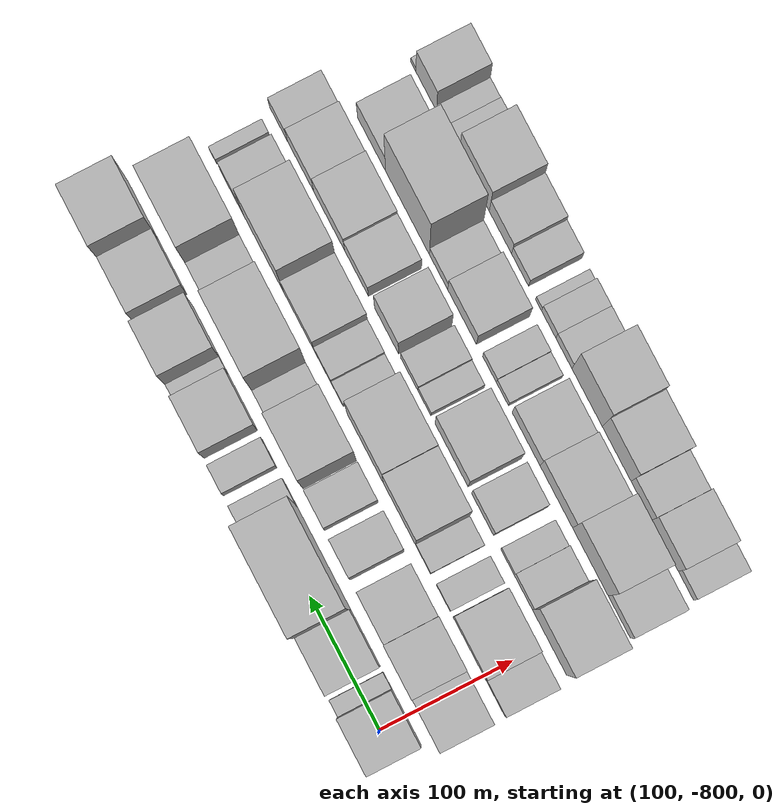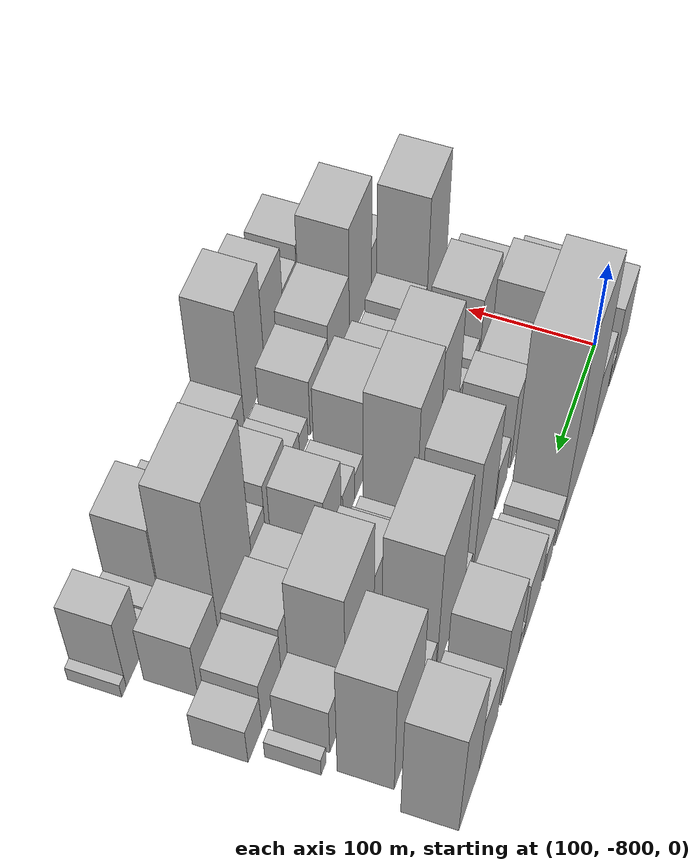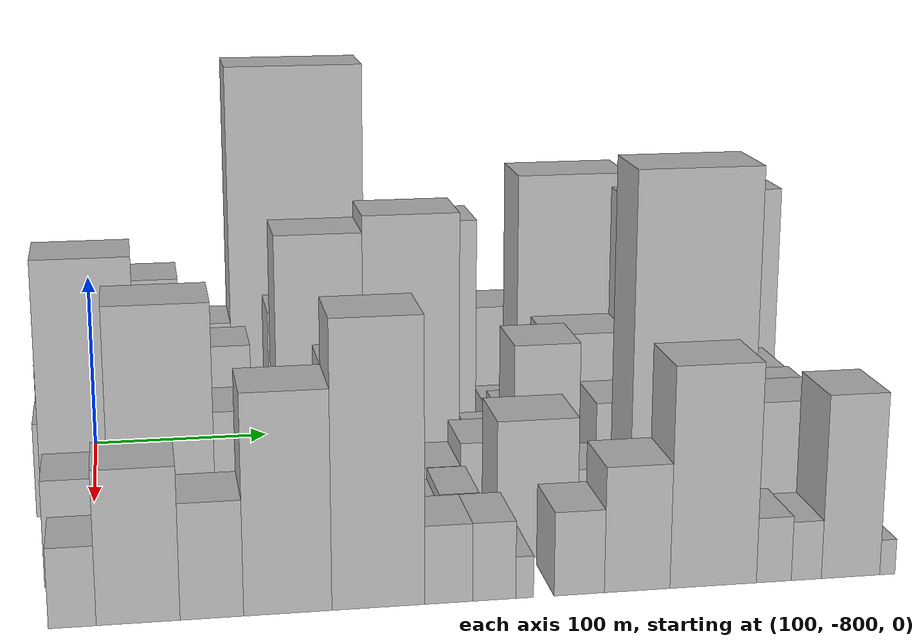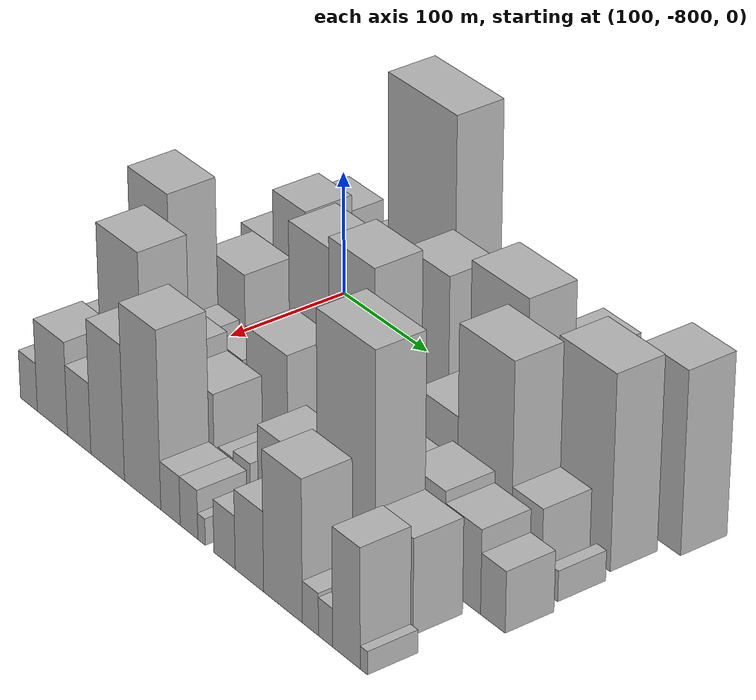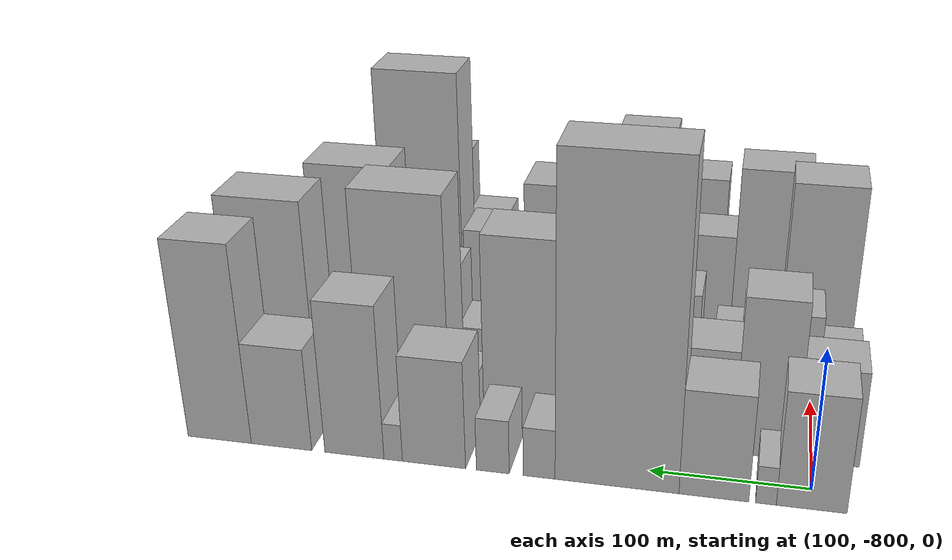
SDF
<sdf version="1.6">
 <world name="default">
  <model name="building_1">
   <static>1</static>
   <pose>100.0000 -800.0666 0 0.000000 0.000000 0.000000</pose>
   <link name="link">
    <pose>0 0 40.50 0 0 0</pose>
    <collision name="collision"><geometry><box><size>40.0000 41.8669 81.0000</size></box></geometry></collision>
    <visual name="visual">
     <cast_shadows>0</cast_shadows>
     <geometry><box><size>40.0000 41.8669 81.0000</size></box></geometry>
     <material>
      <script>
       <uri>model://HANNAS_wall/materials/scripts</uri>
       <uri>model://HANNAS_wall/materials/textures</uri>
       <name>vrc/HANNAS_wall</name>
      </script>
     </material>
    </visual>
   </link>
  </model>
  <model name="building_2">
   <static>1</static>
   <pose>100.0000 -772.9464 0 0.000000 0.000000 0.000000</pose>
   <link name="link">
    <pose>0 0 13.50 0 0 0</pose>
    <collision name="collision"><geometry><box><size>40.0000 12.3734 27.0000</size></box></geometry></collision>
    <visual name="visual">
     <cast_shadows>0</cast_shadows>
     <geometry><box><size>40.0000 12.3734 27.0000</size></box></geometry>
     <material>
      <script>
       <uri>model://HANNAS_wall/materials/scripts</uri>
       <uri>model://HANNAS_wall/materials/textures</uri>
       <name>vrc/HANNAS_wall</name>
      </script>
     </material>
    </visual>
   </link>
  </model>
  <model name="building_3">
   <static>1</static>
   <pose>100.0000 -741.5910 0 0.000000 0.000000 0.000000</pose>
   <link name="link">
    <pose>0 0 37.50 0 0 0</pose>
    <collision name="collision"><geometry><box><size>40.0000 42.3374 75.0000</size></box></geometry></collision>
    <visual name="visual">
     <cast_shadows>0</cast_shadows>
     <geometry><box><size>40.0000 42.3374 75.0000</size></box></geometry>
     <material>
      <script>
       <uri>model://HANNAS_wall/materials/scripts</uri>
       <uri>model://HANNAS_wall/materials/textures</uri>
       <name>vrc/HANNAS_wall</name>
      </script>
     </material>
    </visual>
   </link>
  </model>
  <model name="building_4">
   <static>1</static>
   <pose>100.0000 -681.8136 0 0.000000 0.000000 0.000000</pose>
   <link name="link">
    <pose>0 0 111.00 0 0 0</pose>
    <collision name="collision"><geometry><box><size>40.0000 77.2175 222.0000</size></box></geometry></collision>
    <visual name="visual">
     <cast_shadows>0</cast_shadows>
     <geometry><box><size>40.0000 77.2175 222.0000</size></box></geometry>
     <material>
      <script>
       <uri>model://HANNAS_wall/materials/scripts</uri>
       <uri>model://HANNAS_wall/materials/textures</uri>
       <name>vrc/HANNAS_wall</name>
      </script>
     </material>
    </visual>
   </link>
  </model>
  <model name="building_5">
   <static>1</static>
   <pose>100.0000 -633.0652 0 0.000000 0.000000 0.000000</pose>
   <link name="link">
    <pose>0 0 18.00 0 0 0</pose>
    <collision name="collision"><geometry><box><size>40.0000 20.2793 36.0000</size></box></geometry></collision>
    <visual name="visual">
     <cast_shadows>0</cast_shadows>
     <geometry><box><size>40.0000 20.2793 36.0000</size></box></geometry>
     <material>
      <script>
       <uri>model://HANNAS_wall/materials/scripts</uri>
       <uri>model://HANNAS_wall/materials/textures</uri>
       <name>vrc/HANNAS_wall</name>
      </script>
     </material>
    </visual>
   </link>
  </model>
  <model name="building_6">
   <static>1</static>
   <pose>100.0000 -603.3383 0 0.000000 0.000000 0.000000</pose>
   <link name="link">
    <pose>0 0 19.50 0 0 0</pose>
    <collision name="collision"><geometry><box><size>40.0000 21.1745 39.0000</size></box></geometry></collision>
    <visual name="visual">
     <cast_shadows>0</cast_shadows>
     <geometry><box><size>40.0000 21.1745 39.0000</size></box></geometry>
     <material>
      <script>
       <uri>model://HANNAS_wall/materials/scripts</uri>
       <uri>model://HANNAS_wall/materials/textures</uri>
       <name>vrc/HANNAS_wall</name>
      </script>
     </material>
    </visual>
   </link>
  </model>
  <model name="building_7">
   <static>1</static>
   <pose>100.0000 -564.9898 0 0.000000 0.000000 0.000000</pose>
   <link name="link">
    <pose>0 0 39.00 0 0 0</pose>
    <collision name="collision"><geometry><box><size>40.0000 41.5226 78.0000</size></box></geometry></collision>
    <visual name="visual">
     <cast_shadows>0</cast_shadows>
     <geometry><box><size>40.0000 41.5226 78.0000</size></box></geometry>
     <material>
      <script>
       <uri>model://HANNAS_wall/materials/scripts</uri>
       <uri>model://HANNAS_wall/materials/textures</uri>
       <name>vrc/HANNAS_wall</name>
      </script>
     </material>
    </visual>
   </link>
  </model>
  <model name="building_8">
   <static>1</static>
   <pose>100.0000 -538.1103 0 0.000000 0.000000 0.000000</pose>
   <link name="link">
    <pose>0 0 13.50 0 0 0</pose>
    <collision name="collision"><geometry><box><size>40.0000 12.2365 27.0000</size></box></geometry></collision>
    <visual name="visual">
     <cast_shadows>0</cast_shadows>
     <geometry><box><size>40.0000 12.2365 27.0000</size></box></geometry>
     <material>
      <script>
       <uri>model://HANNAS_wall/materials/scripts</uri>
       <uri>model://HANNAS_wall/materials/textures</uri>
       <name>vrc/HANNAS_wall</name>
      </script>
     </material>
    </visual>
   </link>
  </model>
  <model name="building_9">
   <static>1</static>
   <pose>100.0000 -512.1156 0 0.000000 0.000000 0.000000</pose>
   <link name="link">
    <pose>0 0 55.50 0 0 0</pose>
    <collision name="collision"><geometry><box><size>40.0000 39.7527 111.0000</size></box></geometry></collision>
    <visual name="visual">
     <cast_shadows>0</cast_shadows>
     <geometry><box><size>40.0000 39.7527 111.0000</size></box></geometry>
     <material>
      <script>
       <uri>model://HANNAS_wall/materials/scripts</uri>
       <uri>model://HANNAS_wall/materials/textures</uri>
       <name>vrc/HANNAS_wall</name>
      </script>
     </material>
    </visual>
   </link>
  </model>
  <model name="building_10">
   <static>1</static>
   <pose>100.0000 -462.4981 0 0.000000 0.000000 0.000000</pose>
   <link name="link">
    <pose>0 0 37.50 0 0 0</pose>
    <collision name="collision"><geometry><box><size>40.0000 41.4823 75.0000</size></box></geometry></collision>
    <visual name="visual">
     <cast_shadows>0</cast_shadows>
     <geometry><box><size>40.0000 41.4823 75.0000</size></box></geometry>
     <material>
      <script>
       <uri>model://HANNAS_wall/materials/scripts</uri>
       <uri>model://HANNAS_wall/materials/textures</uri>
       <name>vrc/HANNAS_wall</name>
      </script>
     </material>
    </visual>
   </link>
  </model>
  <model name="building_11">
   <static>1</static>
   <pose>100.0000 -419.6553 0 0.000000 0.000000 0.000000</pose>
   <link name="link">
    <pose>0 0 72.00 0 0 0</pose>
    <collision name="collision"><geometry><box><size>40.0000 44.2034 144.0000</size></box></geometry></collision>
    <visual name="visual">
     <cast_shadows>0</cast_shadows>
     <geometry><box><size>40.0000 44.2034 144.0000</size></box></geometry>
     <material>
      <script>
       <uri>model://HANNAS_wall/materials/scripts</uri>
       <uri>model://HANNAS_wall/materials/textures</uri>
       <name>vrc/HANNAS_wall</name>
      </script>
     </material>
    </visual>
   </link>
  </model>
  <model name="building_40">
   <static>1</static>
   <pose>149.0000 -810.1917 0 0.000000 0.000000 0.000000</pose>
   <link name="link">
    <pose>0 0 34.50 0 0 0</pose>
    <collision name="collision"><geometry><box><size>40.0000 39.6165 69.0000</size></box></geometry></collision>
    <visual name="visual">
     <cast_shadows>0</cast_shadows>
     <geometry><box><size>40.0000 39.6165 69.0000</size></box></geometry>
     <material>
      <script>
       <uri>model://HANNAS_wall/materials/scripts</uri>
       <uri>model://HANNAS_wall/materials/textures</uri>
       <name>vrc/HANNAS_wall</name>
      </script>
     </material>
    </visual>
   </link>
  </model>
  <model name="building_41">
   <static>1</static>
   <pose>149.0000 -770.7093 0 0.000000 0.000000 0.000000</pose>
   <link name="link">
    <pose>0 0 57.00 0 0 0</pose>
    <collision name="collision"><geometry><box><size>40.0000 39.3484 114.0000</size></box></geometry></collision>
    <visual name="visual">
     <cast_shadows>0</cast_shadows>
     <geometry><box><size>40.0000 39.3484 114.0000</size></box></geometry>
     <material>
      <script>
       <uri>model://HANNAS_wall/materials/scripts</uri>
       <uri>model://HANNAS_wall/materials/textures</uri>
       <name>vrc/HANNAS_wall</name>
      </script>
     </material>
    </visual>
   </link>
  </model>
  <model name="building_42">
   <static>1</static>
   <pose>149.0000 -731.8525 0 0.000000 0.000000 0.000000</pose>
   <link name="link">
    <pose>0 0 37.50 0 0 0</pose>
    <collision name="collision"><geometry><box><size>40.0000 38.3653 75.0000</size></box></geometry></collision>
    <visual name="visual">
     <cast_shadows>0</cast_shadows>
     <geometry><box><size>40.0000 38.3653 75.0000</size></box></geometry>
     <material>
      <script>
       <uri>model://HANNAS_wall/materials/scripts</uri>
       <uri>model://HANNAS_wall/materials/textures</uri>
       <name>vrc/HANNAS_wall</name>
      </script>
     </material>
    </visual>
   </link>
  </model>
  <model name="building_43">
   <static>1</static>
   <pose>149.0000 -688.6359 0 0.000000 0.000000 0.000000</pose>
   <link name="link">
    <pose>0 0 46.50 0 0 0</pose>
    <collision name="collision"><geometry><box><size>40.0000 28.0679 93.0000</size></box></geometry></collision>
    <visual name="visual">
     <cast_shadows>0</cast_shadows>
     <geometry><box><size>40.0000 28.0679 93.0000</size></box></geometry>
     <material>
      <script>
       <uri>model://HANNAS_wall/materials/scripts</uri>
       <uri>model://HANNAS_wall/materials/textures</uri>
       <name>vrc/HANNAS_wall</name>
      </script>
     </material>
    </visual>
   </link>
  </model>
  <model name="building_44">
   <static>1</static>
   <pose>149.0000 -651.4638 0 0.000000 0.000000 0.000000</pose>
   <link name="link">
    <pose>0 0 27.00 0 0 0</pose>
    <collision name="collision"><geometry><box><size>40.0000 28.2765 54.0000</size></box></geometry></collision>
    <visual name="visual">
     <cast_shadows>0</cast_shadows>
     <geometry><box><size>40.0000 28.2765 54.0000</size></box></geometry>
     <material>
      <script>
       <uri>model://HANNAS_wall/materials/scripts</uri>
       <uri>model://HANNAS_wall/materials/textures</uri>
       <name>vrc/HANNAS_wall</name>
      </script>
     </material>
    </visual>
   </link>
  </model>
  <model name="building_45">
   <static>1</static>
   <pose>149.0000 -610.1578 0 0.000000 0.000000 0.000000</pose>
   <link name="link">
    <pose>0 0 70.50 0 0 0</pose>
    <collision name="collision"><geometry><box><size>40.0000 48.3355 141.0000</size></box></geometry></collision>
    <visual name="visual">
     <cast_shadows>0</cast_shadows>
     <geometry><box><size>40.0000 48.3355 141.0000</size></box></geometry>
     <material>
      <script>
       <uri>model://HANNAS_wall/materials/scripts</uri>
       <uri>model://HANNAS_wall/materials/textures</uri>
       <name>vrc/HANNAS_wall</name>
      </script>
     </material>
    </visual>
   </link>
  </model>
  <model name="building_46">
   <static>1</static>
   <pose>149.0000 -571.2518 0 0.000000 0.000000 0.000000</pose>
   <link name="link">
    <pose>0 0 16.50 0 0 0</pose>
    <collision name="collision"><geometry><box><size>40.0000 17.4767 33.0000</size></box></geometry></collision>
    <visual name="visual">
     <cast_shadows>0</cast_shadows>
     <geometry><box><size>40.0000 17.4767 33.0000</size></box></geometry>
     <material>
      <script>
       <uri>model://HANNAS_wall/materials/scripts</uri>
       <uri>model://HANNAS_wall/materials/textures</uri>
       <name>vrc/HANNAS_wall</name>
      </script>
     </material>
    </visual>
   </link>
  </model>
  <model name="building_47">
   <static>1</static>
   <pose>149.0000 -531.8372 0 0.000000 0.000000 0.000000</pose>
   <link name="link">
    <pose>0 0 82.50 0 0 0</pose>
    <collision name="collision"><geometry><box><size>40.0000 61.3524 165.0000</size></box></geometry></collision>
    <visual name="visual">
     <cast_shadows>0</cast_shadows>
     <geometry><box><size>40.0000 61.3524 165.0000</size></box></geometry>
     <material>
      <script>
       <uri>model://HANNAS_wall/materials/scripts</uri>
       <uri>model://HANNAS_wall/materials/textures</uri>
       <name>vrc/HANNAS_wall</name>
      </script>
     </material>
    </visual>
   </link>
  </model>
  <model name="building_48">
   <static>1</static>
   <pose>149.0000 -483.6819 0 0.000000 0.000000 0.000000</pose>
   <link name="link">
    <pose>0 0 25.50 0 0 0</pose>
    <collision name="collision"><geometry><box><size>40.0000 28.9581 51.0000</size></box></geometry></collision>
    <visual name="visual">
     <cast_shadows>0</cast_shadows>
     <geometry><box><size>40.0000 28.9581 51.0000</size></box></geometry>
     <material>
      <script>
       <uri>model://HANNAS_wall/materials/scripts</uri>
       <uri>model://HANNAS_wall/materials/textures</uri>
       <name>vrc/HANNAS_wall</name>
      </script>
     </material>
    </visual>
   </link>
  </model>
  <model name="building_49">
   <static>1</static>
   <pose>149.0000 -440.0245 0 0.000000 0.000000 0.000000</pose>
   <link name="link">
    <pose>0 0 76.50 0 0 0</pose>
    <collision name="collision"><geometry><box><size>40.0000 58.3566 153.0000</size></box></geometry></collision>
    <visual name="visual">
     <cast_shadows>0</cast_shadows>
     <geometry><box><size>40.0000 58.3566 153.0000</size></box></geometry>
     <material>
      <script>
       <uri>model://HANNAS_wall/materials/scripts</uri>
       <uri>model://HANNAS_wall/materials/textures</uri>
       <name>vrc/HANNAS_wall</name>
      </script>
     </material>
    </visual>
   </link>
  </model>
  <model name="building_86">
   <static>1</static>
   <pose>198.0000 -816.2228 0 0.000000 0.000000 0.000000</pose>
   <link name="link">
    <pose>0 0 25.50 0 0 0</pose>
    <collision name="collision"><geometry><box><size>40.0000 27.5544 51.0000</size></box></geometry></collision>
    <visual name="visual">
     <cast_shadows>0</cast_shadows>
     <geometry><box><size>40.0000 27.5544 51.0000</size></box></geometry>
     <material>
      <script>
       <uri>model://HANNAS_wall/materials/scripts</uri>
       <uri>model://HANNAS_wall/materials/textures</uri>
       <name>vrc/HANNAS_wall</name>
      </script>
     </material>
    </visual>
   </link>
  </model>
  <model name="building_87">
   <static>1</static>
   <pose>198.0000 -779.1922 0 0.000000 0.000000 0.000000</pose>
   <link name="link">
    <pose>0 0 39.00 0 0 0</pose>
    <collision name="collision"><geometry><box><size>40.0000 46.5069 78.0000</size></box></geometry></collision>
    <visual name="visual">
     <cast_shadows>0</cast_shadows>
     <geometry><box><size>40.0000 46.5069 78.0000</size></box></geometry>
     <material>
      <script>
       <uri>model://HANNAS_wall/materials/scripts</uri>
       <uri>model://HANNAS_wall/materials/textures</uri>
       <name>vrc/HANNAS_wall</name>
      </script>
     </material>
    </visual>
   </link>
  </model>
  <model name="building_88">
   <static>1</static>
   <pose>198.0000 -741.8868 0 0.000000 0.000000 0.000000</pose>
   <link name="link">
    <pose>0 0 18.00 0 0 0</pose>
    <collision name="collision"><geometry><box><size>40.0000 20.1038 36.0000</size></box></geometry></collision>
    <visual name="visual">
     <cast_shadows>0</cast_shadows>
     <geometry><box><size>40.0000 20.1038 36.0000</size></box></geometry>
     <material>
      <script>
       <uri>model://HANNAS_wall/materials/scripts</uri>
       <uri>model://HANNAS_wall/materials/textures</uri>
       <name>vrc/HANNAS_wall</name>
      </script>
     </material>
    </visual>
   </link>
  </model>
  <model name="building_89">
   <static>1</static>
   <pose>198.0000 -713.1197 0 0.000000 0.000000 0.000000</pose>
   <link name="link">
    <pose>0 0 18.00 0 0 0</pose>
    <collision name="collision"><geometry><box><size>40.0000 21.4303 36.0000</size></box></geometry></collision>
    <visual name="visual">
     <cast_shadows>0</cast_shadows>
     <geometry><box><size>40.0000 21.4303 36.0000</size></box></geometry>
     <material>
      <script>
       <uri>model://HANNAS_wall/materials/scripts</uri>
       <uri>model://HANNAS_wall/materials/textures</uri>
       <name>vrc/HANNAS_wall</name>
      </script>
     </material>
    </visual>
   </link>
  </model>
  <model name="building_90">
   <static>1</static>
   <pose>198.0000 -679.1906 0 0.000000 0.000000 0.000000</pose>
   <link name="link">
    <pose>0 0 73.50 0 0 0</pose>
    <collision name="collision"><geometry><box><size>40.0000 46.4281 147.0000</size></box></geometry></collision>
    <visual name="visual">
     <cast_shadows>0</cast_shadows>
     <geometry><box><size>40.0000 46.4281 147.0000</size></box></geometry>
     <material>
      <script>
       <uri>model://HANNAS_wall/materials/scripts</uri>
       <uri>model://HANNAS_wall/materials/textures</uri>
       <name>vrc/HANNAS_wall</name>
      </script>
     </material>
    </visual>
   </link>
  </model>
  <model name="building_91">
   <static>1</static>
   <pose>198.0000 -630.0033 0 0.000000 0.000000 0.000000</pose>
   <link name="link">
    <pose>0 0 78.00 0 0 0</pose>
    <collision name="collision"><geometry><box><size>40.0000 51.9465 156.0000</size></box></geometry></collision>
    <visual name="visual">
     <cast_shadows>0</cast_shadows>
     <geometry><box><size>40.0000 51.9465 156.0000</size></box></geometry>
     <material>
      <script>
       <uri>model://HANNAS_wall/materials/scripts</uri>
       <uri>model://HANNAS_wall/materials/textures</uri>
       <name>vrc/HANNAS_wall</name>
      </script>
     </material>
    </visual>
   </link>
  </model>
  <model name="building_92">
   <static>1</static>
   <pose>198.0000 -589.7651 0 0.000000 0.000000 0.000000</pose>
   <link name="link">
    <pose>0 0 16.50 0 0 0</pose>
    <collision name="collision"><geometry><box><size>40.0000 16.5299 33.0000</size></box></geometry></collision>
    <visual name="visual">
     <cast_shadows>0</cast_shadows>
     <geometry><box><size>40.0000 16.5299 33.0000</size></box></geometry>
     <material>
      <script>
       <uri>model://HANNAS_wall/materials/scripts</uri>
       <uri>model://HANNAS_wall/materials/textures</uri>
       <name>vrc/HANNAS_wall</name>
      </script>
     </material>
    </visual>
   </link>
  </model>
  <model name="building_93">
   <static>1</static>
   <pose>198.0000 -569.1661 0 0.000000 0.000000 0.000000</pose>
   <link name="link">
    <pose>0 0 22.50 0 0 0</pose>
    <collision name="collision"><geometry><box><size>40.0000 24.6680 45.0000</size></box></geometry></collision>
    <visual name="visual">
     <cast_shadows>0</cast_shadows>
     <geometry><box><size>40.0000 24.6680 45.0000</size></box></geometry>
     <material>
      <script>
       <uri>model://HANNAS_wall/materials/scripts</uri>
       <uri>model://HANNAS_wall/materials/textures</uri>
       <name>vrc/HANNAS_wall</name>
      </script>
     </material>
    </visual>
   </link>
  </model>
  <model name="building_94">
   <static>1</static>
   <pose>198.0000 -534.4286 0 0.000000 0.000000 0.000000</pose>
   <link name="link">
    <pose>0 0 43.50 0 0 0</pose>
    <collision name="collision"><geometry><box><size>40.0000 44.8070 87.0000</size></box></geometry></collision>
    <visual name="visual">
     <cast_shadows>0</cast_shadows>
     <geometry><box><size>40.0000 44.8070 87.0000</size></box></geometry>
     <material>
      <script>
       <uri>model://HANNAS_wall/materials/scripts</uri>
       <uri>model://HANNAS_wall/materials/textures</uri>
       <name>vrc/HANNAS_wall</name>
      </script>
     </material>
    </visual>
   </link>
  </model>
  <model name="building_95">
   <static>1</static>
   <pose>198.0000 -482.9594 0 0.000000 0.000000 0.000000</pose>
   <link name="link">
    <pose>0 0 79.50 0 0 0</pose>
    <collision name="collision"><geometry><box><size>40.0000 58.1315 159.0000</size></box></geometry></collision>
    <visual name="visual">
     <cast_shadows>0</cast_shadows>
     <geometry><box><size>40.0000 58.1315 159.0000</size></box></geometry>
     <material>
      <script>
       <uri>model://HANNAS_wall/materials/scripts</uri>
       <uri>model://HANNAS_wall/materials/textures</uri>
       <name>vrc/HANNAS_wall</name>
      </script>
     </material>
    </visual>
   </link>
  </model>
  <model name="building_96">
   <static>1</static>
   <pose>198.0000 -437.7335 0 0.000000 0.000000 0.000000</pose>
   <link name="link">
    <pose>0 0 31.50 0 0 0</pose>
    <collision name="collision"><geometry><box><size>40.0000 32.3203 63.0000</size></box></geometry></collision>
    <visual name="visual">
     <cast_shadows>0</cast_shadows>
     <geometry><box><size>40.0000 32.3203 63.0000</size></box></geometry>
     <material>
      <script>
       <uri>model://HANNAS_wall/materials/scripts</uri>
       <uri>model://HANNAS_wall/materials/textures</uri>
       <name>vrc/HANNAS_wall</name>
      </script>
     </material>
    </visual>
   </link>
  </model>
  <model name="building_97">
   <static>1</static>
   <pose>198.0000 -409.5723 0 0.000000 0.000000 0.000000</pose>
   <link name="link">
    <pose>0 0 12.00 0 0 0</pose>
    <collision name="collision"><geometry><box><size>40.0000 10.0021 24.0000</size></box></geometry></collision>
    <visual name="visual">
     <cast_shadows>0</cast_shadows>
     <geometry><box><size>40.0000 10.0021 24.0000</size></box></geometry>
     <material>
      <script>
       <uri>model://HANNAS_wall/materials/scripts</uri>
       <uri>model://HANNAS_wall/materials/textures</uri>
       <name>vrc/HANNAS_wall</name>
      </script>
     </material>
    </visual>
   </link>
  </model>
  <model name="building_136">
   <static>1</static>
   <pose>247.0000 -800.6093 0 0.000000 0.000000 0.000000</pose>
   <link name="link">
    <pose>0 0 75.00 0 0 0</pose>
    <collision name="collision"><geometry><box><size>40.0000 48.7814 150.0000</size></box></geometry></collision>
    <visual name="visual">
     <cast_shadows>0</cast_shadows>
     <geometry><box><size>40.0000 48.7814 150.0000</size></box></geometry>
     <material>
      <script>
       <uri>model://HANNAS_wall/materials/scripts</uri>
       <uri>model://HANNAS_wall/materials/textures</uri>
       <name>vrc/HANNAS_wall</name>
      </script>
     </material>
    </visual>
   </link>
  </model>
  <model name="building_137">
   <static>1</static>
   <pose>247.0000 -763.0975 0 0.000000 0.000000 0.000000</pose>
   <link name="link">
    <pose>0 0 24.00 0 0 0</pose>
    <collision name="collision"><geometry><box><size>40.0000 26.2423 48.0000</size></box></geometry></collision>
    <visual name="visual">
     <cast_shadows>0</cast_shadows>
     <geometry><box><size>40.0000 26.2423 48.0000</size></box></geometry>
     <material>
      <script>
       <uri>model://HANNAS_wall/materials/scripts</uri>
       <uri>model://HANNAS_wall/materials/textures</uri>
       <name>vrc/HANNAS_wall</name>
      </script>
     </material>
    </visual>
   </link>
  </model>
  <model name="building_138">
   <static>1</static>
   <pose>247.0000 -740.2750 0 0.000000 0.000000 0.000000</pose>
   <link name="link">
    <pose>0 0 16.50 0 0 0</pose>
    <collision name="collision"><geometry><box><size>40.0000 19.4026 33.0000</size></box></geometry></collision>
    <visual name="visual">
     <cast_shadows>0</cast_shadows>
     <geometry><box><size>40.0000 19.4026 33.0000</size></box></geometry>
     <material>
      <script>
       <uri>model://HANNAS_wall/materials/scripts</uri>
       <uri>model://HANNAS_wall/materials/textures</uri>
       <name>vrc/HANNAS_wall</name>
      </script>
     </material>
    </visual>
   </link>
  </model>
  <model name="building_139">
   <static>1</static>
   <pose>247.0000 -704.7419 0 0.000000 0.000000 0.000000</pose>
   <link name="link">
    <pose>0 0 30.00 0 0 0</pose>
    <collision name="collision"><geometry><box><size>40.0000 31.6636 60.0000</size></box></geometry></collision>
    <visual name="visual">
     <cast_shadows>0</cast_shadows>
     <geometry><box><size>40.0000 31.6636 60.0000</size></box></geometry>
     <material>
      <script>
       <uri>model://HANNAS_wall/materials/scripts</uri>
       <uri>model://HANNAS_wall/materials/textures</uri>
       <name>vrc/HANNAS_wall</name>
      </script>
     </material>
    </visual>
   </link>
  </model>
  <model name="building_140">
   <static>1</static>
   <pose>247.0000 -660.1826 0 0.000000 0.000000 0.000000</pose>
   <link name="link">
    <pose>0 0 45.00 0 0 0</pose>
    <collision name="collision"><geometry><box><size>40.0000 47.4549 90.0000</size></box></geometry></collision>
    <visual name="visual">
     <cast_shadows>0</cast_shadows>
     <geometry><box><size>40.0000 47.4549 90.0000</size></box></geometry>
     <material>
      <script>
       <uri>model://HANNAS_wall/materials/scripts</uri>
       <uri>model://HANNAS_wall/materials/textures</uri>
       <name>vrc/HANNAS_wall</name>
      </script>
     </material>
    </visual>
   </link>
  </model>
  <model name="building_141">
   <static>1</static>
   <pose>247.0000 -621.1882 0 0.000000 0.000000 0.000000</pose>
   <link name="link">
    <pose>0 0 16.50 0 0 0</pose>
    <collision name="collision"><geometry><box><size>40.0000 18.5339 33.0000</size></box></geometry></collision>
    <visual name="visual">
     <cast_shadows>0</cast_shadows>
     <geometry><box><size>40.0000 18.5339 33.0000</size></box></geometry>
     <material>
      <script>
       <uri>model://HANNAS_wall/materials/scripts</uri>
       <uri>model://HANNAS_wall/materials/textures</uri>
       <name>vrc/HANNAS_wall</name>
      </script>
     </material>
    </visual>
   </link>
  </model>
  <model name="building_142">
   <static>1</static>
   <pose>247.0000 -599.3636 0 0.000000 0.000000 0.000000</pose>
   <link name="link">
    <pose>0 0 22.50 0 0 0</pose>
    <collision name="collision"><geometry><box><size>40.0000 25.1154 45.0000</size></box></geometry></collision>
    <visual name="visual">
     <cast_shadows>0</cast_shadows>
     <geometry><box><size>40.0000 25.1154 45.0000</size></box></geometry>
     <material>
      <script>
       <uri>model://HANNAS_wall/materials/scripts</uri>
       <uri>model://HANNAS_wall/materials/textures</uri>
       <name>vrc/HANNAS_wall</name>
      </script>
     </material>
    </visual>
   </link>
  </model>
  <model name="building_143">
   <static>1</static>
   <pose>247.0000 -566.4821 0 0.000000 0.000000 0.000000</pose>
   <link name="link">
    <pose>0 0 48.00 0 0 0</pose>
    <collision name="collision"><geometry><box><size>40.0000 34.6477 96.0000</size></box></geometry></collision>
    <visual name="visual">
     <cast_shadows>0</cast_shadows>
     <geometry><box><size>40.0000 34.6477 96.0000</size></box></geometry>
     <material>
      <script>
       <uri>model://HANNAS_wall/materials/scripts</uri>
       <uri>model://HANNAS_wall/materials/textures</uri>
       <name>vrc/HANNAS_wall</name>
      </script>
     </material>
    </visual>
   </link>
  </model>
  <model name="building_144">
   <static>1</static>
   <pose>247.0000 -523.0402 0 0.000000 0.000000 0.000000</pose>
   <link name="link">
    <pose>0 0 31.50 0 0 0</pose>
    <collision name="collision"><geometry><box><size>40.0000 34.2360 63.0000</size></box></geometry></collision>
    <visual name="visual">
     <cast_shadows>0</cast_shadows>
     <geometry><box><size>40.0000 34.2360 63.0000</size></box></geometry>
     <material>
      <script>
       <uri>model://HANNAS_wall/materials/scripts</uri>
       <uri>model://HANNAS_wall/materials/textures</uri>
       <name>vrc/HANNAS_wall</name>
      </script>
     </material>
    </visual>
   </link>
  </model>
  <model name="building_145">
   <static>1</static>
   <pose>247.0000 -483.5645 0 0.000000 0.000000 0.000000</pose>
   <link name="link">
    <pose>0 0 37.50 0 0 0</pose>
    <collision name="collision"><geometry><box><size>40.0000 44.7155 75.0000</size></box></geometry></collision>
    <visual name="visual">
     <cast_shadows>0</cast_shadows>
     <geometry><box><size>40.0000 44.7155 75.0000</size></box></geometry>
     <material>
      <script>
       <uri>model://HANNAS_wall/materials/scripts</uri>
       <uri>model://HANNAS_wall/materials/textures</uri>
       <name>vrc/HANNAS_wall</name>
      </script>
     </material>
    </visual>
   </link>
  </model>
  <model name="building_146">
   <static>1</static>
   <pose>247.0000 -442.1226 0 0.000000 0.000000 0.000000</pose>
   <link name="link">
    <pose>0 0 33.00 0 0 0</pose>
    <collision name="collision"><geometry><box><size>40.0000 38.1683 66.0000</size></box></geometry></collision>
    <visual name="visual">
     <cast_shadows>0</cast_shadows>
     <geometry><box><size>40.0000 38.1683 66.0000</size></box></geometry>
     <material>
      <script>
       <uri>model://HANNAS_wall/materials/scripts</uri>
       <uri>model://HANNAS_wall/materials/textures</uri>
       <name>vrc/HANNAS_wall</name>
      </script>
     </material>
    </visual>
   </link>
  </model>
  <model name="building_147">
   <static>1</static>
   <pose>247.0000 -410.1035 0 0.000000 0.000000 0.000000</pose>
   <link name="link">
    <pose>0 0 24.00 0 0 0</pose>
    <collision name="collision"><geometry><box><size>40.0000 25.8699 48.0000</size></box></geometry></collision>
    <visual name="visual">
     <cast_shadows>0</cast_shadows>
     <geometry><box><size>40.0000 25.8699 48.0000</size></box></geometry>
     <material>
      <script>
       <uri>model://HANNAS_wall/materials/scripts</uri>
       <uri>model://HANNAS_wall/materials/textures</uri>
       <name>vrc/HANNAS_wall</name>
      </script>
     </material>
    </visual>
   </link>
  </model>
  <model name="building_184">
   <static>1</static>
   <pose>296.0000 -807.0984 0 0.000000 0.000000 0.000000</pose>
   <link name="link">
    <pose>0 0 27.00 0 0 0</pose>
    <collision name="collision"><geometry><box><size>40.0000 31.8032 54.0000</size></box></geometry></collision>
    <visual name="visual">
     <cast_shadows>0</cast_shadows>
     <geometry><box><size>40.0000 31.8032 54.0000</size></box></geometry>
     <material>
      <script>
       <uri>model://HANNAS_wall/materials/scripts</uri>
       <uri>model://HANNAS_wall/materials/textures</uri>
       <name>vrc/HANNAS_wall</name>
      </script>
     </material>
    </visual>
   </link>
  </model>
  <model name="building_185">
   <static>1</static>
   <pose>296.0000 -765.7875 0 0.000000 0.000000 0.000000</pose>
   <link name="link">
    <pose>0 0 69.00 0 0 0</pose>
    <collision name="collision"><geometry><box><size>40.0000 50.8186 138.0000</size></box></geometry></collision>
    <visual name="visual">
     <cast_shadows>0</cast_shadows>
     <geometry><box><size>40.0000 50.8186 138.0000</size></box></geometry>
     <material>
      <script>
       <uri>model://HANNAS_wall/materials/scripts</uri>
       <uri>model://HANNAS_wall/materials/textures</uri>
       <name>vrc/HANNAS_wall</name>
      </script>
     </material>
    </visual>
   </link>
  </model>
  <model name="building_186">
   <static>1</static>
   <pose>296.0000 -717.0696 0 0.000000 0.000000 0.000000</pose>
   <link name="link">
    <pose>0 0 42.00 0 0 0</pose>
    <collision name="collision"><geometry><box><size>40.0000 46.6173 84.0000</size></box></geometry></collision>
    <visual name="visual">
     <cast_shadows>0</cast_shadows>
     <geometry><box><size>40.0000 46.6173 84.0000</size></box></geometry>
     <material>
      <script>
       <uri>model://HANNAS_wall/materials/scripts</uri>
       <uri>model://HANNAS_wall/materials/textures</uri>
       <name>vrc/HANNAS_wall</name>
      </script>
     </material>
    </visual>
   </link>
  </model>
  <model name="building_187">
   <static>1</static>
   <pose>296.0000 -673.6247 0 0.000000 0.000000 0.000000</pose>
   <link name="link">
    <pose>0 0 34.50 0 0 0</pose>
    <collision name="collision"><geometry><box><size>40.0000 40.2724 69.0000</size></box></geometry></collision>
    <visual name="visual">
     <cast_shadows>0</cast_shadows>
     <geometry><box><size>40.0000 40.2724 69.0000</size></box></geometry>
     <material>
      <script>
       <uri>model://HANNAS_wall/materials/scripts</uri>
       <uri>model://HANNAS_wall/materials/textures</uri>
       <name>vrc/HANNAS_wall</name>
      </script>
     </material>
    </visual>
   </link>
  </model>
  <model name="building_188">
   <static>1</static>
   <pose>296.0000 -639.7486 0 0.000000 0.000000 0.000000</pose>
   <link name="link">
    <pose>0 0 15.00 0 0 0</pose>
    <collision name="collision"><geometry><box><size>40.0000 17.4798 30.0000</size></box></geometry></collision>
    <visual name="visual">
     <cast_shadows>0</cast_shadows>
     <geometry><box><size>40.0000 17.4798 30.0000</size></box></geometry>
     <material>
      <script>
       <uri>model://HANNAS_wall/materials/scripts</uri>
       <uri>model://HANNAS_wall/materials/textures</uri>
       <name>vrc/HANNAS_wall</name>
      </script>
     </material>
    </visual>
   </link>
  </model>
  <model name="building_189">
   <static>1</static>
   <pose>296.0000 -621.0604 0 0.000000 0.000000 0.000000</pose>
   <link name="link">
    <pose>0 0 18.00 0 0 0</pose>
    <collision name="collision"><geometry><box><size>40.0000 19.8966 36.0000</size></box></geometry></collision>
    <visual name="visual">
     <cast_shadows>0</cast_shadows>
     <geometry><box><size>40.0000 19.8966 36.0000</size></box></geometry>
     <material>
      <script>
       <uri>model://HANNAS_wall/materials/scripts</uri>
       <uri>model://HANNAS_wall/materials/textures</uri>
       <name>vrc/HANNAS_wall</name>
      </script>
     </material>
    </visual>
   </link>
  </model>
  <model name="building_190">
   <static>1</static>
   <pose>296.0000 -581.5223 0 0.000000 0.000000 0.000000</pose>
   <link name="link">
    <pose>0 0 36.00 0 0 0</pose>
    <collision name="collision"><geometry><box><size>40.0000 41.1797 72.0000</size></box></geometry></collision>
    <visual name="visual">
     <cast_shadows>0</cast_shadows>
     <geometry><box><size>40.0000 41.1797 72.0000</size></box></geometry>
     <material>
      <script>
       <uri>model://HANNAS_wall/materials/scripts</uri>
       <uri>model://HANNAS_wall/materials/textures</uri>
       <name>vrc/HANNAS_wall</name>
      </script>
     </material>
    </visual>
   </link>
  </model>
  <model name="building_191">
   <static>1</static>
   <pose>296.0000 -547.6765 0 0.000000 0.000000 0.000000</pose>
   <link name="link">
    <pose>0 0 22.50 0 0 0</pose>
    <collision name="collision"><geometry><box><size>40.0000 26.5118 45.0000</size></box></geometry></collision>
    <visual name="visual">
     <cast_shadows>0</cast_shadows>
     <geometry><box><size>40.0000 26.5118 45.0000</size></box></geometry>
     <material>
      <script>
       <uri>model://HANNAS_wall/materials/scripts</uri>
       <uri>model://HANNAS_wall/materials/textures</uri>
       <name>vrc/HANNAS_wall</name>
      </script>
     </material>
    </visual>
   </link>
  </model>
  <model name="building_192">
   <static>1</static>
   <pose>296.0000 -502.7590 0 0.000000 0.000000 0.000000</pose>
   <link name="link">
    <pose>0 0 97.50 0 0 0</pose>
    <collision name="collision"><geometry><box><size>40.0000 63.3232 195.0000</size></box></geometry></collision>
    <visual name="visual">
     <cast_shadows>0</cast_shadows>
     <geometry><box><size>40.0000 63.3232 195.0000</size></box></geometry>
     <material>
      <script>
       <uri>model://HANNAS_wall/materials/scripts</uri>
       <uri>model://HANNAS_wall/materials/textures</uri>
       <name>vrc/HANNAS_wall</name>
      </script>
     </material>
    </visual>
   </link>
  </model>
  <model name="building_193">
   <static>1</static>
   <pose>296.0000 -450.7876 0 0.000000 0.000000 0.000000</pose>
   <link name="link">
    <pose>0 0 37.50 0 0 0</pose>
    <collision name="collision"><geometry><box><size>40.0000 40.6196 75.0000</size></box></geometry></collision>
    <visual name="visual">
     <cast_shadows>0</cast_shadows>
     <geometry><box><size>40.0000 40.6196 75.0000</size></box></geometry>
     <material>
      <script>
       <uri>model://HANNAS_wall/materials/scripts</uri>
       <uri>model://HANNAS_wall/materials/textures</uri>
       <name>vrc/HANNAS_wall</name>
      </script>
     </material>
    </visual>
   </link>
  </model>
  <model name="building_230">
   <static>1</static>
   <pose>345.0000 -809.1842 0 0.000000 0.000000 0.000000</pose>
   <link name="link">
    <pose>0 0 19.50 0 0 0</pose>
    <collision name="collision"><geometry><box><size>40.0000 21.6315 39.0000</size></box></geometry></collision>
    <visual name="visual">
     <cast_shadows>0</cast_shadows>
     <geometry><box><size>40.0000 21.6315 39.0000</size></box></geometry>
     <material>
      <script>
       <uri>model://HANNAS_wall/materials/scripts</uri>
       <uri>model://HANNAS_wall/materials/textures</uri>
       <name>vrc/HANNAS_wall</name>
      </script>
     </material>
    </visual>
   </link>
  </model>
  <model name="building_231">
   <static>1</static>
   <pose>345.0000 -779.2790 0 0.000000 0.000000 0.000000</pose>
   <link name="link">
    <pose>0 0 37.50 0 0 0</pose>
    <collision name="collision"><geometry><box><size>40.0000 38.1789 75.0000</size></box></geometry></collision>
    <visual name="visual">
     <cast_shadows>0</cast_shadows>
     <geometry><box><size>40.0000 38.1789 75.0000</size></box></geometry>
     <material>
      <script>
       <uri>model://HANNAS_wall/materials/scripts</uri>
       <uri>model://HANNAS_wall/materials/textures</uri>
       <name>vrc/HANNAS_wall</name>
      </script>
     </material>
    </visual>
   </link>
  </model>
  <model name="building_232">
   <static>1</static>
   <pose>345.0000 -745.5553 0 0.000000 0.000000 0.000000</pose>
   <link name="link">
    <pose>0 0 28.50 0 0 0</pose>
    <collision name="collision"><geometry><box><size>40.0000 29.2686 57.0000</size></box></geometry></collision>
    <visual name="visual">
     <cast_shadows>0</cast_shadows>
     <geometry><box><size>40.0000 29.2686 57.0000</size></box></geometry>
     <material>
      <script>
       <uri>model://HANNAS_wall/materials/scripts</uri>
       <uri>model://HANNAS_wall/materials/textures</uri>
       <name>vrc/HANNAS_wall</name>
      </script>
     </material>
    </visual>
   </link>
  </model>
  <model name="building_233">
   <static>1</static>
   <pose>345.0000 -710.3779 0 0.000000 0.000000 0.000000</pose>
   <link name="link">
    <pose>0 0 54.00 0 0 0</pose>
    <collision name="collision"><geometry><box><size>40.0000 41.0862 108.0000</size></box></geometry></collision>
    <visual name="visual">
     <cast_shadows>0</cast_shadows>
     <geometry><box><size>40.0000 41.0862 108.0000</size></box></geometry>
     <material>
      <script>
       <uri>model://HANNAS_wall/materials/scripts</uri>
       <uri>model://HANNAS_wall/materials/textures</uri>
       <name>vrc/HANNAS_wall</name>
      </script>
     </material>
    </visual>
   </link>
  </model>
  <model name="building_234">
   <static>1</static>
   <pose>345.0000 -667.9379 0 0.000000 0.000000 0.000000</pose>
   <link name="link">
    <pose>0 0 70.50 0 0 0</pose>
    <collision name="collision"><geometry><box><size>40.0000 43.7939 141.0000</size></box></geometry></collision>
    <visual name="visual">
     <cast_shadows>0</cast_shadows>
     <geometry><box><size>40.0000 43.7939 141.0000</size></box></geometry>
     <material>
      <script>
       <uri>model://HANNAS_wall/materials/scripts</uri>
       <uri>model://HANNAS_wall/materials/textures</uri>
       <name>vrc/HANNAS_wall</name>
      </script>
     </material>
    </visual>
   </link>
  </model>
  <model name="building_235">
   <static>1</static>
   <pose>345.0000 -634.5459 0 0.000000 0.000000 0.000000</pose>
   <link name="link">
    <pose>0 0 19.50 0 0 0</pose>
    <collision name="collision"><geometry><box><size>40.0000 22.9900 39.0000</size></box></geometry></collision>
    <visual name="visual">
     <cast_shadows>0</cast_shadows>
     <geometry><box><size>40.0000 22.9900 39.0000</size></box></geometry>
     <material>
      <script>
       <uri>model://HANNAS_wall/materials/scripts</uri>
       <uri>model://HANNAS_wall/materials/textures</uri>
       <name>vrc/HANNAS_wall</name>
      </script>
     </material>
    </visual>
   </link>
  </model>
  <model name="building_236">
   <static>1</static>
   <pose>345.0000 -612.7099 0 0.000000 0.000000 0.000000</pose>
   <link name="link">
    <pose>0 0 19.50 0 0 0</pose>
    <collision name="collision"><geometry><box><size>40.0000 20.6819 39.0000</size></box></geometry></collision>
    <visual name="visual">
     <cast_shadows>0</cast_shadows>
     <geometry><box><size>40.0000 20.6819 39.0000</size></box></geometry>
     <material>
      <script>
       <uri>model://HANNAS_wall/materials/scripts</uri>
       <uri>model://HANNAS_wall/materials/textures</uri>
       <name>vrc/HANNAS_wall</name>
      </script>
     </material>
    </visual>
   </link>
  </model>
  <model name="building_237">
   <static>1</static>
   <pose>345.0000 -598.0635 0 0.000000 0.000000 0.000000</pose>
   <link name="link">
    <pose>0 0 10.50 0 0 0</pose>
    <collision name="collision"><geometry><box><size>40.0000 8.6109 21.0000</size></box></geometry></collision>
    <visual name="visual">
     <cast_shadows>0</cast_shadows>
     <geometry><box><size>40.0000 8.6109 21.0000</size></box></geometry>
     <material>
      <script>
       <uri>model://HANNAS_wall/materials/scripts</uri>
       <uri>model://HANNAS_wall/materials/textures</uri>
       <name>vrc/HANNAS_wall</name>
      </script>
     </material>
    </visual>
   </link>
  </model>
  <model name="building_238">
   <static>1</static>
   <pose>345.0000 -571.5035 0 0.000000 0.000000 0.000000</pose>
   <link name="link">
    <pose>0 0 21.00 0 0 0</pose>
    <collision name="collision"><geometry><box><size>40.0000 24.5091 42.0000</size></box></geometry></collision>
    <visual name="visual">
     <cast_shadows>0</cast_shadows>
     <geometry><box><size>40.0000 24.5091 42.0000</size></box></geometry>
     <material>
      <script>
       <uri>model://HANNAS_wall/materials/scripts</uri>
       <uri>model://HANNAS_wall/materials/textures</uri>
       <name>vrc/HANNAS_wall</name>
      </script>
     </material>
    </visual>
   </link>
  </model>
  <model name="building_239">
   <static>1</static>
   <pose>345.0000 -543.1042 0 0.000000 0.000000 0.000000</pose>
   <link name="link">
    <pose>0 0 31.50 0 0 0</pose>
    <collision name="collision"><geometry><box><size>40.0000 32.2896 63.0000</size></box></geometry></collision>
    <visual name="visual">
     <cast_shadows>0</cast_shadows>
     <geometry><box><size>40.0000 32.2896 63.0000</size></box></geometry>
     <material>
      <script>
       <uri>model://HANNAS_wall/materials/scripts</uri>
       <uri>model://HANNAS_wall/materials/textures</uri>
       <name>vrc/HANNAS_wall</name>
      </script>
     </material>
    </visual>
   </link>
  </model>
  <model name="building_240">
   <static>1</static>
   <pose>345.0000 -505.3946 0 0.000000 0.000000 0.000000</pose>
   <link name="link">
    <pose>0 0 55.50 0 0 0</pose>
    <collision name="collision"><geometry><box><size>40.0000 43.1295 111.0000</size></box></geometry></collision>
    <visual name="visual">
     <cast_shadows>0</cast_shadows>
     <geometry><box><size>40.0000 43.1295 111.0000</size></box></geometry>
     <material>
      <script>
       <uri>model://HANNAS_wall/materials/scripts</uri>
       <uri>model://HANNAS_wall/materials/textures</uri>
       <name>vrc/HANNAS_wall</name>
      </script>
     </material>
    </visual>
   </link>
  </model>
  <model name="building_241">
   <static>1</static>
   <pose>345.0000 -475.0428 0 0.000000 0.000000 0.000000</pose>
   <link name="link">
    <pose>0 0 16.50 0 0 0</pose>
    <collision name="collision"><geometry><box><size>40.0000 17.5741 33.0000</size></box></geometry></collision>
    <visual name="visual">
     <cast_shadows>0</cast_shadows>
     <geometry><box><size>40.0000 17.5741 33.0000</size></box></geometry>
     <material>
      <script>
       <uri>model://HANNAS_wall/materials/scripts</uri>
       <uri>model://HANNAS_wall/materials/textures</uri>
       <name>vrc/HANNAS_wall</name>
      </script>
     </material>
    </visual>
   </link>
  </model>
  <model name="building_242">
   <static>1</static>
   <pose>345.0000 -458.6364 0 0.000000 0.000000 0.000000</pose>
   <link name="link">
    <pose>0 0 15.00 0 0 0</pose>
    <collision name="collision"><geometry><box><size>40.0000 15.2387 30.0000</size></box></geometry></collision>
    <visual name="visual">
     <cast_shadows>0</cast_shadows>
     <geometry><box><size>40.0000 15.2387 30.0000</size></box></geometry>
     <material>
      <script>
       <uri>model://HANNAS_wall/materials/scripts</uri>
       <uri>model://HANNAS_wall/materials/textures</uri>
       <name>vrc/HANNAS_wall</name>
      </script>
     </material>
    </visual>
   </link>
  </model>
  <model name="building_243">
   <static>1</static>
   <pose>345.0000 -436.1302 0 0.000000 0.000000 0.000000</pose>
   <link name="link">
    <pose>0 0 46.50 0 0 0</pose>
    <collision name="collision"><geometry><box><size>40.0000 29.7737 93.0000</size></box></geometry></collision>
    <visual name="visual">
     <cast_shadows>0</cast_shadows>
     <geometry><box><size>40.0000 29.7737 93.0000</size></box></geometry>
     <material>
      <script>
       <uri>model://HANNAS_wall/materials/scripts</uri>
       <uri>model://HANNAS_wall/materials/textures</uri>
       <name>vrc/HANNAS_wall</name>
      </script>
     </material>
    </visual>
   </link>
  </model>
  <model name="building_244">
   <static>1</static>
   <pose>345.0000 -417.3230 0 0.000000 0.000000 0.000000</pose>
   <link name="link">
    <pose>0 0 9.00 0 0 0</pose>
    <collision name="collision"><geometry><box><size>40.0000 7.8407 18.0000</size></box></geometry></collision>
    <visual name="visual">
     <cast_shadows>0</cast_shadows>
     <geometry><box><size>40.0000 7.8407 18.0000</size></box></geometry>
     <material>
      <script>
       <uri>model://HANNAS_wall/materials/scripts</uri>
       <uri>model://HANNAS_wall/materials/textures</uri>
       <name>vrc/HANNAS_wall</name>
      </script>
     </material>
    </visual>
   </link>
  </model>
 </world>
</sdf>
